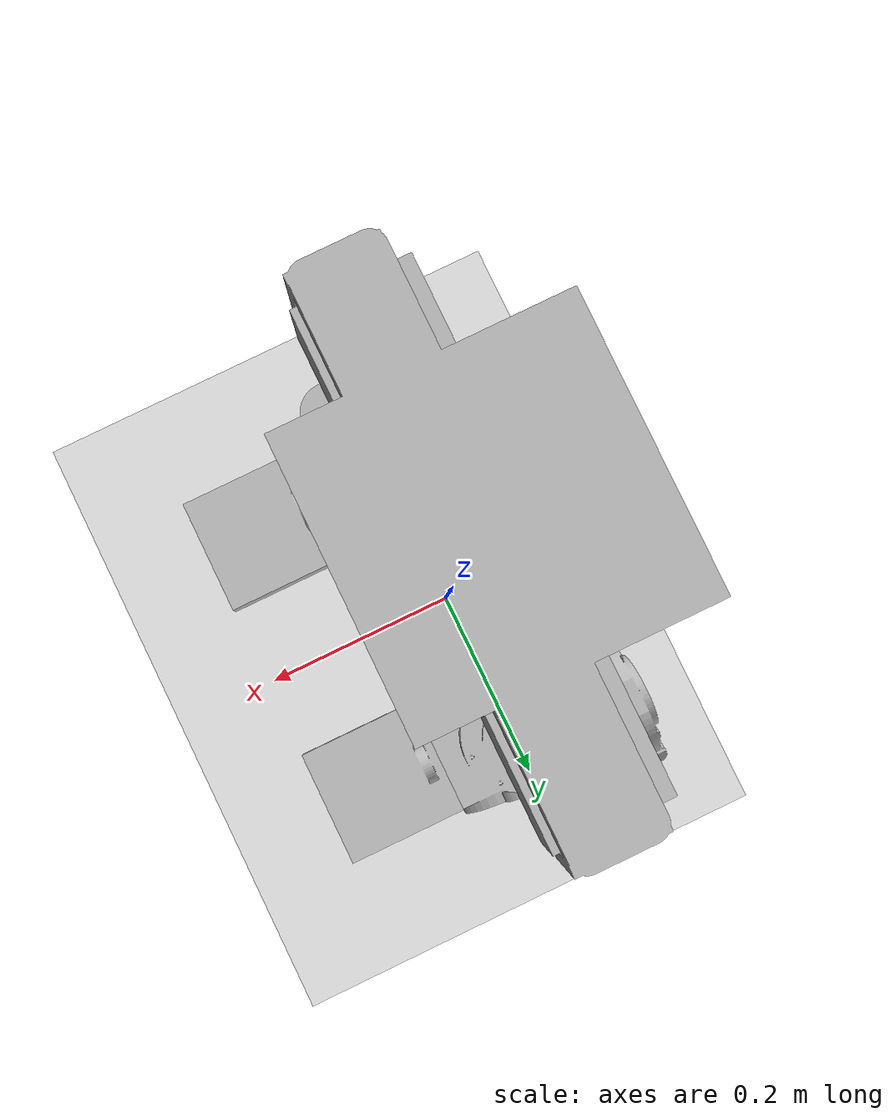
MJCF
<mujoco model="nemo scene">
  <include file="nemo2.xml"/>

  <statistic center="1 -0.8 1.1" extent=".3"/>

  <visual>
    <headlight diffuse="0.6 0.6 0.6" ambient="0.1 0.1 0.1" specular="0.9 0.9 0.9"/>
    <rgba haze="0.15 0.25 0.35 1"/>
    <global azimuth="140" elevation="-20"/>
  </visual>

  <asset>
    <texture type="skybox" builtin="gradient" rgb1="0.3 0.5 0.7" rgb2="0 0 0" width="512" height="3072"/>
    <texture type="2d" name="groundplane" builtin="checker" mark="edge" rgb1="0.2 0.3 0.4" rgb2="0.1 0.2 0.3"
      markrgb="0.8 0.8 0.8" width="300" height="300"/>
    <material name="groundplane" texture="groundplane" texuniform="true" texrepeat="5 5" reflectance="0.2"/>
  </asset>

  <worldbody>
    <geom conaffinity="1" contype="1" condim="3" friction="1 .1 .1" name="floor" pos="0 0 0" size="40 40 0.125" type="plane" rgba="0.5 0.5 0.5 1.0"/>
  </worldbody>
</mujoco>

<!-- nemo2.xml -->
<mujoco model="nemo2">
<compiler angle="radian" meshdir="assets" autolimits="true"/>

  <option timestep="0.0035" iterations="8" ls_iterations="4">
    <flag eulerdamp="disable"/>
  </option>

  <custom>
        <numeric data="2500" name="constraint_limit_stiffness"/>
        <numeric data="27000" name="constraint_stiffness"/>
        <numeric data="30" name="constraint_ang_damping"/>
        <numeric data="80" name="constraint_vel_damping"/>
        <numeric data="-0.05" name="ang_damping"/>
        <numeric data="0.5" name="joint_scale_pos"/>
        <numeric data="0.1" name="joint_scale_ang"/>
        <numeric data="0" name="spring_mass_scale"/>
        <numeric data="1" name="spring_inertia_scale"/>
        <numeric data="20" name="matrix_inv_iterations"/>
        <numeric data="15" name="solver_maxls"/>
  </custom>

  <visual>
    <global ellipsoidinertia="true"/>
  </visual>
    <default>
    <geom contype="0" conaffinity="0" condim="3" solref="0.005 1"/>
    <equality solref="0.005 1"/>

    <default class="nemo2">
      <site rgba="1 0 0 1" size="0.01" group="5"/>
      <joint damping="0.5" armature="0.01" frictionloss="0.1"/>
      <default class="visual">
        <geom group="2" type="mesh" contype="0" conaffinity="0" density="0" material="metallic"/>
      </default>
      <default class="collision">
        <geom conaffinity="1" contype="1" group="3" rgba="0.5 0.5 0.5 1"/>
      </default>
    </default>
  </default>

  <asset>
    <material name="metallic" rgba="0.7 0.7 0.7 1"/>
    <material name="black" rgba="0.2 0.2 0.2 1"/>
    <material name="transparent" rgba="0 0 0 0"/>

    <mesh file="pelvis.stl"/>
      <mesh file="l_hip_pitch.stl"/>
      <mesh file="l_hip_roll.stl"/>
      <mesh file="l_hip_yaw.stl"/>
      <mesh file="l_knee.stl"/>
      <mesh file="l_foot_pitch.stl"/>
      <mesh file="l_foot_roll.stl"/>

      <mesh file="r_hip_pitch.stl"/>
      <mesh file="r_hip_roll.stl"/>
      <mesh file="r_hip_yaw.stl"/>
      <mesh file="r_knee.stl"/>
      <mesh file="r_foot_pitch.stl"/>
      <mesh file="r_foot_roll.stl"/>

      <mesh file="col_inner.stl"/>
      <mesh file="col_outer.stl"/>
  </asset>
<worldbody>
    <light name="spotlight" mode="targetbodycom" target="pelvis" pos="0 -6 4" cutoff="30"/>
    <body name="pelvis" pos="0 0 0.5619" childclass="nemo2">
    <inertial pos ="0.0 0.0 0.07068" quat="1 0 0 0" mass="2.5425" diaginertia="1.217499566 1.217499566 1.217499566"/>
    <freejoint name="floating_base"/>
    <light name="tracking" mode="trackcom" pos="0 0 2"/>
    <geom type="mesh" class="visual" mesh="pelvis"/>
      <site name="pelvis_back" pos="-0.05 0.0 0.0"/>
        <site name="pelvis_front" pos="0.05 0.0 0.0"/>
        <site name="head" pos="0.0 0.0 0.5"/>

      <body name="l_hip_pitch" pos="0 0.07985 -0.0762" quat="1 0 0 0">
        <inertial pos="0 0.06159 -0.01" quat="1 0 0 0" mass="1.6625" diaginertia="0.67 0.67 0.67"/>
        <joint name="l_hip_pitch" axis="0 1 0" range="-3 3"/>
        <geom type="mesh" class="visual" mesh="l_hip_pitch"/>
        <body name="l_hip_roll" pos="-0.03942 0.06159 -0.1076" quat="1 0 0 0">
          <inertial pos="0.038 0 -0.04777" quat="1 0 0 0" mass="1.75" diaginertia="0.7 0.7 0.7"/>
          <joint name="l_hip_roll" axis="1 0 0" range="-0.279253 1.0472"/>
          <geom type="mesh" class="visual" mesh="l_hip_roll"/>
          <body name="l_hip_yaw" pos="0.0508 0 -0.09525" quat="1 0 0 0">
            <inertial pos="0 0 -0.0508" quat="1 0 0 0" mass="1.6" diaginertia="0.64 0.64 0.64"/>
            <joint name="l_hip_yaw" axis="0 0 1" range="-2.5 2.5"/>
            <geom type="mesh" class="visual" mesh="l_hip_yaw"/>
            <body name="l_knee" pos="0 -0.0381 -0.0508" quat="1 0 0 0">
              <inertial pos="0 0.03962 -0.08044" quat="1 0 0 0" mass="0.75" diaginertia="0.3 0.3 0.3"/>
              <joint name="l_knee" axis="0 1 0" range="-0.3 2"/>
              <geom type="mesh" class="visual" mesh="l_knee"/>
              <body name="l_foot_pitch" pos="0 0 -0.1559" quat="1 0 0 0">
                <inertial pos="0 0.0381 0" quat="1 0 0 0" mass="1.6" diaginertia="0.64 0.64 0.64"/>
                <joint name="l_foot_pitch" axis="0 1 0" range="-0.5 0.5"/>
                <geom type="mesh" class="visual" mesh="l_foot_pitch"/>
                <body name="l_foot_roll" pos="0.05176 0.0381 0" quat="1 0 0 0">
                  <inertial pos="-0.0056 0 0.02894" quat="1 0 0 0" mass="2" diaginertia="0.4 0.4 0.4"/>
                  <joint name="l_foot_roll" axis="1 0 0" range="-1 1"/>
                  <geom type="mesh" class="visual" mesh="l_foot_roll"/>
                  <geom class="collision" name="left_foot" pos="-0.04164 0 -0.0212" size="0.135 0.0575 0.05" type="box"/>

                  <site name="left_foot_p1" pos="0.05 0.0 -0.0762"/>
                  <site name="left_foot_p2" pos="-0.05 0.0 -0.0762"/>
                  <site name="left_foot_p3" pos="0.0 0.05 -0.0762"/>
                </body>
              </body>
            </body>
          </body>
        </body>
      </body>

      <body name="r_hip_pitch" pos="0 -0.07985 -0.0762" quat="1 0 0 0">
        <inertial pos="0 -0.06159 -0.01" quat="1 0 0 0" mass="1.6625" diaginertia="0.67 0.67 0.67"/>
        <joint name="r_hip_pitch" axis="0 1 0" range="-3 3"/>
        <geom type="mesh" class="visual" mesh="r_hip_pitch"/>
        <body name="r_hip_roll" pos="-0.03942 -0.06159 -0.1076" quat="1 0 0 0">
          <inertial pos="0.038 0 -0.04777" quat="1 0 0 0" mass="1.75" diaginertia="0.7 0.7 0.7"/>
          <joint name="r_hip_roll" axis="1 0 0" range="-1.0472 0.279253"/>
          <geom type="mesh" class="visual" mesh="r_hip_roll"/>
          <body name="r_hip_yaw" pos="0.0508 0 -0.09525" quat="1 0 0 0">
            <inertial pos="0 0 -0.0508" quat="1 0 0 0" mass="1.6" diaginertia="0.64 0.64 0.64"/>
            <joint name="r_hip_yaw" axis="0 0 1" range="-2.5 2.5"/>
            <geom type="mesh" class="visual" mesh="r_hip_yaw"/>
            <body name="r_knee" pos="0 -0.0381 -0.0508" quat="1 0 0 0">
              <inertial pos="0 -0.03962 -0.08044" quat="1 0 0 0" mass="0.75" diaginertia="0.3 0.3 0.3"/>
              <joint name="r_knee" axis="0 1 0" range="-0.3 2"/>
              <geom type="mesh" class="visual" mesh="l_knee"/>
              <body name="r_foot_pitch" pos="0 0 -0.1559" quat="1 0 0 0">
                <inertial pos="0 -0.0381 0" quat="1 0 0 0" mass="1.6" diaginertia="0.64 0.64 0.64"/>
                <joint name="r_foot_pitch" axis="0 1 0" range="-0.5 0.5"/>
                <geom type="mesh" class="visual" mesh="l_foot_pitch"/>
                <body name="r_foot_roll" pos="0.05176 0.0381 0" quat="1 0 0 0">
                  <inertial pos="-0.0056 0 0.02894" quat="1 0 0 0" mass="2" diaginertia="0.4 0.4 0.4"/>
                  <joint name="r_foot_roll" axis="1 0 0" range="-1 1"/>
                  <geom type="mesh" class="visual" mesh="l_foot_roll"/>
                  <geom class="collision" name="right_foot" pos="-0.04164 0 -0.0212" size="0.135 0.0575 0.05" type="box" rgba="0.5 0.5 0.5 1"/>

                  <site name="right_foot_p1" pos="0.05 0.0 -0.0762"/>
                  <site name="right_foot_p2" pos="-0.05 0.0 -0.0762"/>
                  <site name="right_foot_p3" pos="0.0 -0.05 -0.0762"/>
                </body>
              </body>
            </body>
          </body>
        </body>
      </body>

    </body>

</worldbody>
<actuator>
  <position kp="60.0" class="nemo2" name="l_hip_pitch" joint="l_hip_pitch" forcerange="-23 23" inheritrange="1"/>
  <position kp="30.0" class="nemo2" name="l_hip_roll" joint="l_hip_roll" forcerange="-12 12" inheritrange="1"/>
  <position kp="30.0" class="nemo2" name="l_hip_yaw" joint="l_hip_yaw" forcerange="-12 12" inheritrange="1"/>
  <position kp="60.0" class="nemo2" name="l_knee" joint="l_knee" forcerange="-23 23" inheritrange="1"/>
  <position kp="40.0" class="nemo2" name="l_foot_pitch" joint="l_foot_pitch" forcerange="-23 23" inheritrange="1"/>
  <position kp="20.0" class="nemo2" name="l_foot_roll" joint="l_foot_roll" forcerange="-12 12" inheritrange="1"/>

  <position kp="60.0" class="nemo2" name="r_hip_pitch" joint="r_hip_pitch" forcerange="-23 23" inheritrange="1"/>
  <position kp="30.0" class="nemo2" name="r_hip_roll" joint="r_hip_roll" forcerange="-12 12" inheritrange="1"/>
  <position kp="60.0" class="nemo2" name="r_hip_yaw" joint="r_hip_yaw" forcerange="-23 23" inheritrange="1"/>
  <position kp="60.0" class="nemo2" name="r_knee" joint="r_knee" forcerange="-23 23" inheritrange="1"/>
  <position kp="40.0" class="nemo2" name="r_foot_pitch" joint="r_foot_pitch" forcerange="-23 23" inheritrange="1"/>
  <position kp="20.0" class="nemo2" name="r_foot_roll" joint="r_foot_roll" forcerange="-12 12" inheritrange="1"/>

  <velocity kv="60.0" class="nemo2" name="l_hip_pitch_v" joint="l_hip_pitch" forcerange="-23 23" ctrlrange="-20 20"/>
  <velocity kv="30.0" class="nemo2" name="l_hip_roll_v" joint="l_hip_roll" forcerange="-11 11" ctrlrange="-20 20"/>
  <velocity kv="30.0" class="nemo2" name="l_hip_yaw_v" joint="l_hip_yaw" forcerange="-11 11" ctrlrange="-20 20"/>
  <velocity kv="60.0" class="nemo2" name="l_knee_v" joint="l_knee" forcerange="-23 23" ctrlrange="-20 20"/>
  <velocity kv="30.0" class="nemo2" name="l_foot_pitch_v" joint="l_foot_pitch" forcerange="-23 23" ctrlrange="-20 20"/>
  <velocity kv="15.0" class="nemo2" name="l_foot_roll_v" joint="l_foot_roll" forcerange="-11 11" ctrlrange="-20 20"/>

  <velocity kv="60.0" class="nemo2" name="r_hip_pitch_v" joint="r_hip_pitch" forcerange="-23 23" ctrlrange="-20 20"/>
  <velocity kv="30.0" class="nemo2" name="r_hip_roll_v" joint="r_hip_roll" forcerange="-11 11" ctrlrange="-20 20"/>
  <velocity kv="30.0" class="nemo2" name="r_hip_yaw_v" joint="r_hip_yaw" forcerange="-11 11" ctrlrange="-20 20"/>
  <velocity kv="60.0" class="nemo2" name="r_knee_v" joint="r_knee" forcerange="-23 23" ctrlrange="-20 20"/>
  <velocity kv="30.0" class="nemo2" name="r_foot_pitch_v" joint="r_foot_pitch" forcerange="-23 23" ctrlrange="-20 20"/>
  <velocity kv="15.0" class="nemo2" name="r_foot_roll_v" joint="r_foot_roll" forcerange="-11 11" ctrlrange="-20 20"/>

</actuator>

<keyframe>
    <key name="stand"
      qpos="
      0 0 0.5619
      1 0 0 0
      0 0 0 0 0 0
      0 0 0 0 0 0
      "/>
</keyframe>

</mujoco>
